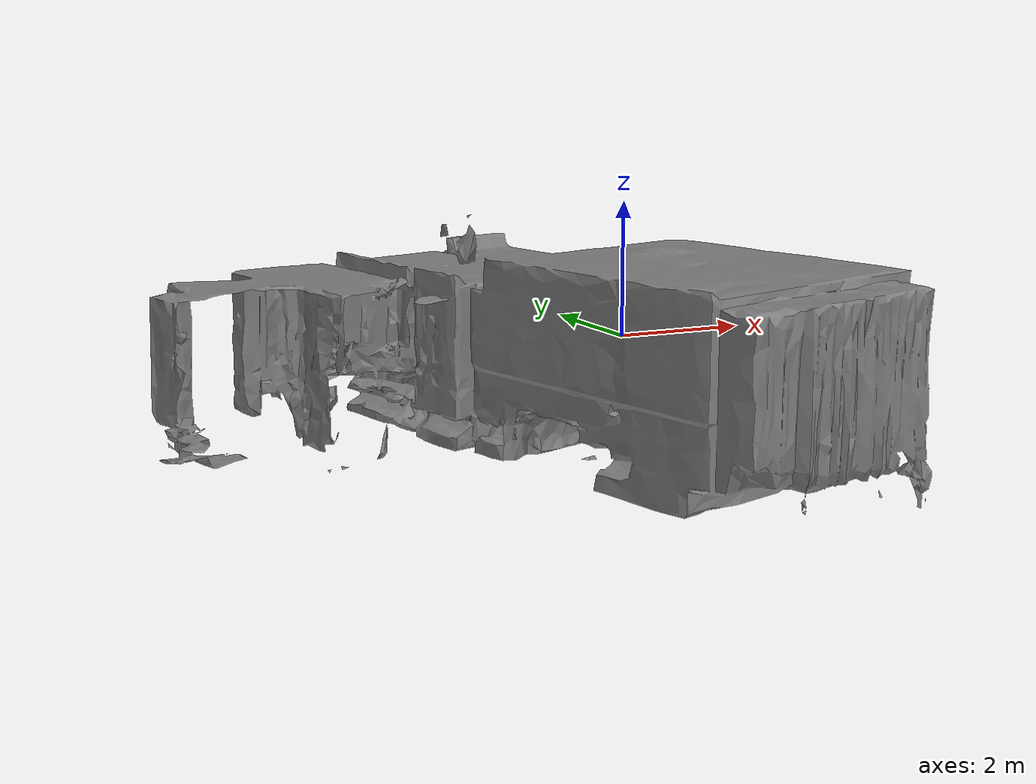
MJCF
<mujoco model="mesh_raw_prune_flat_sim">
  <option gravity="0 0 -9.81" />
  <compiler meshdir="../meshes" texturedir="../meshes/" />
  <include file="object/mesh_raw_prune_dependencies.xml" />
  <default>
    <default class="obj_visual">
      <geom group="0" type="mesh" contype="0" conaffinity="0" />
    </default>
  </default>
  <worldbody>
    <light pos="0 0 5" dir="0 0 -1" />
    <body name="mesh" pos="0 0 0">
      <include file="object/mesh_raw_prune.xml" />
    </body>
  </worldbody>
</mujoco>

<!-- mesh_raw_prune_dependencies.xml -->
<mujocoinclude>
  <asset>
    <mesh name="mesh" file="object/mesh/mesh.obj" />
    <mesh name="mesh_raw_prune_part_0" file="object/mesh_raw_prune/part_0.obj" />
    <mesh name="mesh_raw_prune_part_1" file="object/mesh_raw_prune/part_1.obj" />
    <mesh name="mesh_raw_prune_part_2" file="object/mesh_raw_prune/part_2.obj" />
    <mesh name="mesh_raw_prune_part_3" file="object/mesh_raw_prune/part_3.obj" />
    <mesh name="mesh_raw_prune_part_4" file="object/mesh_raw_prune/part_4.obj" />
    <mesh name="mesh_raw_prune_part_5" file="object/mesh_raw_prune/part_5.obj" />
    <mesh name="mesh_raw_prune_part_6" file="object/mesh_raw_prune/part_6.obj" />
    <mesh name="mesh_raw_prune_part_7" file="object/mesh_raw_prune/part_7.obj" />
    <mesh name="mesh_raw_prune_part_8" file="object/mesh_raw_prune/part_8.obj" />
    <mesh name="mesh_raw_prune_part_9" file="object/mesh_raw_prune/part_9.obj" />
    <mesh name="mesh_raw_prune_part_10" file="object/mesh_raw_prune/part_10.obj" />
    <mesh name="mesh_raw_prune_part_11" file="object/mesh_raw_prune/part_11.obj" />
    <mesh name="mesh_raw_prune_part_12" file="object/mesh_raw_prune/part_12.obj" />
    <mesh name="mesh_raw_prune_part_13" file="object/mesh_raw_prune/part_13.obj" />
    <mesh name="mesh_raw_prune_part_14" file="object/mesh_raw_prune/part_14.obj" />
    <mesh name="mesh_raw_prune_part_15" file="object/mesh_raw_prune/part_15.obj" />
    <mesh name="mesh_raw_prune_part_16" file="object/mesh_raw_prune/part_16.obj" />
    <mesh name="mesh_raw_prune_part_17" file="object/mesh_raw_prune/part_17.obj" />
    <mesh name="mesh_raw_prune_part_18" file="object/mesh_raw_prune/part_18.obj" />
    <mesh name="mesh_raw_prune_part_19" file="object/mesh_raw_prune/part_19.obj" />
    <mesh name="mesh_raw_prune_part_20" file="object/mesh_raw_prune/part_20.obj" />
    <mesh name="mesh_raw_prune_part_21" file="object/mesh_raw_prune/part_21.obj" />
    <mesh name="mesh_raw_prune_part_22" file="object/mesh_raw_prune/part_22.obj" />
    <mesh name="mesh_raw_prune_part_23" file="object/mesh_raw_prune/part_23.obj" />
    <mesh name="mesh_raw_prune_part_24" file="object/mesh_raw_prune/part_24.obj" />
    <mesh name="mesh_raw_prune_part_25" file="object/mesh_raw_prune/part_25.obj" />
    <mesh name="mesh_raw_prune_part_26" file="object/mesh_raw_prune/part_26.obj" />
    <mesh name="mesh_raw_prune_part_27" file="object/mesh_raw_prune/part_27.obj" />
    <mesh name="mesh_raw_prune_part_28" file="object/mesh_raw_prune/part_28.obj" />
    <mesh name="mesh_raw_prune_part_29" file="object/mesh_raw_prune/part_29.obj" />
    <mesh name="mesh_raw_prune_part_30" file="object/mesh_raw_prune/part_30.obj" />
    <mesh name="mesh_raw_prune_part_31" file="object/mesh_raw_prune/part_31.obj" />
    <mesh name="mesh_raw_prune_part_32" file="object/mesh_raw_prune/part_32.obj" />
    <mesh name="mesh_raw_prune_part_33" file="object/mesh_raw_prune/part_33.obj" />
    <mesh name="mesh_raw_prune_part_34" file="object/mesh_raw_prune/part_34.obj" />
    <mesh name="mesh_raw_prune_part_35" file="object/mesh_raw_prune/part_35.obj" />
    <mesh name="mesh_raw_prune_part_36" file="object/mesh_raw_prune/part_36.obj" />
    <mesh name="mesh_raw_prune_part_37" file="object/mesh_raw_prune/part_37.obj" />
    <mesh name="mesh_raw_prune_part_38" file="object/mesh_raw_prune/part_38.obj" />
    <mesh name="mesh_raw_prune_part_39" file="object/mesh_raw_prune/part_39.obj" />
    <mesh name="mesh_raw_prune_part_40" file="object/mesh_raw_prune/part_40.obj" />
    <mesh name="mesh_raw_prune_part_41" file="object/mesh_raw_prune/part_41.obj" />
    <mesh name="mesh_raw_prune_part_42" file="object/mesh_raw_prune/part_42.obj" />
    <mesh name="mesh_raw_prune_part_43" file="object/mesh_raw_prune/part_43.obj" />
    <mesh name="mesh_raw_prune_part_44" file="object/mesh_raw_prune/part_44.obj" />
    <mesh name="mesh_raw_prune_part_45" file="object/mesh_raw_prune/part_45.obj" />
    <mesh name="mesh_raw_prune_part_46" file="object/mesh_raw_prune/part_46.obj" />
    <mesh name="mesh_raw_prune_part_47" file="object/mesh_raw_prune/part_47.obj" />
    <mesh name="mesh_raw_prune_part_48" file="object/mesh_raw_prune/part_48.obj" />
    <mesh name="mesh_raw_prune_part_49" file="object/mesh_raw_prune/part_49.obj" />
    <mesh name="mesh_raw_prune_part_50" file="object/mesh_raw_prune/part_50.obj" />
    <mesh name="mesh_raw_prune_part_51" file="object/mesh_raw_prune/part_51.obj" />
    <mesh name="mesh_raw_prune_part_52" file="object/mesh_raw_prune/part_52.obj" />
    <mesh name="mesh_raw_prune_part_53" file="object/mesh_raw_prune/part_53.obj" />
    <mesh name="mesh_raw_prune_part_54" file="object/mesh_raw_prune/part_54.obj" />
    <mesh name="mesh_raw_prune_part_55" file="object/mesh_raw_prune/part_55.obj" />
    <mesh name="mesh_raw_prune_part_56" file="object/mesh_raw_prune/part_56.obj" />
    <mesh name="mesh_raw_prune_part_57" file="object/mesh_raw_prune/part_57.obj" />
    <mesh name="mesh_raw_prune_part_58" file="object/mesh_raw_prune/part_58.obj" />
    <mesh name="mesh_raw_prune_part_59" file="object/mesh_raw_prune/part_59.obj" />
    <mesh name="mesh_raw_prune_part_60" file="object/mesh_raw_prune/part_60.obj" />
    <mesh name="mesh_raw_prune_part_61" file="object/mesh_raw_prune/part_61.obj" />
    <mesh name="mesh_raw_prune_part_62" file="object/mesh_raw_prune/part_62.obj" />
    <mesh name="mesh_raw_prune_part_63" file="object/mesh_raw_prune/part_63.obj" />
    <mesh name="mesh_raw_prune_part_64" file="object/mesh_raw_prune/part_64.obj" />
    <mesh name="mesh_raw_prune_part_65" file="object/mesh_raw_prune/part_65.obj" />
    <mesh name="mesh_raw_prune_part_66" file="object/mesh_raw_prune/part_66.obj" />
    <mesh name="mesh_raw_prune_part_67" file="object/mesh_raw_prune/part_67.obj" />
    <mesh name="mesh_raw_prune_part_68" file="object/mesh_raw_prune/part_68.obj" />
    <mesh name="mesh_raw_prune_part_69" file="object/mesh_raw_prune/part_69.obj" />
    <mesh name="mesh_raw_prune_part_70" file="object/mesh_raw_prune/part_70.obj" />
    <mesh name="mesh_raw_prune_part_71" file="object/mesh_raw_prune/part_71.obj" />
    <mesh name="mesh_raw_prune_part_72" file="object/mesh_raw_prune/part_72.obj" />
    <mesh name="mesh_raw_prune_part_73" file="object/mesh_raw_prune/part_73.obj" />
    <mesh name="mesh_raw_prune_part_74" file="object/mesh_raw_prune/part_74.obj" />
    <mesh name="mesh_raw_prune_part_75" file="object/mesh_raw_prune/part_75.obj" />
    <mesh name="mesh_raw_prune_part_76" file="object/mesh_raw_prune/part_76.obj" />
    <mesh name="mesh_raw_prune_part_77" file="object/mesh_raw_prune/part_77.obj" />
    <mesh name="mesh_raw_prune_part_78" file="object/mesh_raw_prune/part_78.obj" />
    <mesh name="mesh_raw_prune_part_79" file="object/mesh_raw_prune/part_79.obj" />
    <mesh name="mesh_raw_prune_part_80" file="object/mesh_raw_prune/part_80.obj" />
    <mesh name="mesh_raw_prune_part_81" file="object/mesh_raw_prune/part_81.obj" />
    <mesh name="mesh_raw_prune_part_82" file="object/mesh_raw_prune/part_82.obj" />
    <mesh name="mesh_raw_prune_part_83" file="object/mesh_raw_prune/part_83.obj" />
    <mesh name="mesh_raw_prune_part_84" file="object/mesh_raw_prune/part_84.obj" />
    <mesh name="mesh_raw_prune_part_85" file="object/mesh_raw_prune/part_85.obj" />
    <mesh name="mesh_raw_prune_part_86" file="object/mesh_raw_prune/part_86.obj" />
    <mesh name="mesh_raw_prune_part_87" file="object/mesh_raw_prune/part_87.obj" />
    <mesh name="mesh_raw_prune_part_88" file="object/mesh_raw_prune/part_88.obj" />
    <mesh name="mesh_raw_prune_part_89" file="object/mesh_raw_prune/part_89.obj" />
    <mesh name="mesh_raw_prune_part_90" file="object/mesh_raw_prune/part_90.obj" />
    <mesh name="mesh_raw_prune_part_91" file="object/mesh_raw_prune/part_91.obj" />
    <mesh name="mesh_raw_prune_part_92" file="object/mesh_raw_prune/part_92.obj" />
    <mesh name="mesh_raw_prune_part_93" file="object/mesh_raw_prune/part_93.obj" />
    <mesh name="mesh_raw_prune_part_94" file="object/mesh_raw_prune/part_94.obj" />
    <mesh name="mesh_raw_prune_part_95" file="object/mesh_raw_prune/part_95.obj" />
    <mesh name="mesh_raw_prune_part_96" file="object/mesh_raw_prune/part_96.obj" />
    <mesh name="mesh_raw_prune_part_97" file="object/mesh_raw_prune/part_97.obj" />
    <mesh name="mesh_raw_prune_part_98" file="object/mesh_raw_prune/part_98.obj" />
    <mesh name="mesh_raw_prune_part_99" file="object/mesh_raw_prune/part_99.obj" />
    <mesh name="mesh_raw_prune_part_100" file="object/mesh_raw_prune/part_100.obj" />
    <mesh name="mesh_raw_prune_part_101" file="object/mesh_raw_prune/part_101.obj" />
    <mesh name="mesh_raw_prune_part_102" file="object/mesh_raw_prune/part_102.obj" />
    <mesh name="mesh_raw_prune_part_103" file="object/mesh_raw_prune/part_103.obj" />
    <mesh name="mesh_raw_prune_part_104" file="object/mesh_raw_prune/part_104.obj" />
    <mesh name="mesh_raw_prune_part_105" file="object/mesh_raw_prune/part_105.obj" />
    <mesh name="mesh_raw_prune_part_106" file="object/mesh_raw_prune/part_106.obj" />
    <mesh name="mesh_raw_prune_part_107" file="object/mesh_raw_prune/part_107.obj" />
    <mesh name="mesh_raw_prune_part_108" file="object/mesh_raw_prune/part_108.obj" />
    <mesh name="mesh_raw_prune_part_109" file="object/mesh_raw_prune/part_109.obj" />
    <mesh name="mesh_raw_prune_part_110" file="object/mesh_raw_prune/part_110.obj" />
    <mesh name="mesh_raw_prune_part_111" file="object/mesh_raw_prune/part_111.obj" />
    <mesh name="mesh_raw_prune_part_112" file="object/mesh_raw_prune/part_112.obj" />
    <mesh name="mesh_raw_prune_part_113" file="object/mesh_raw_prune/part_113.obj" />
    <mesh name="mesh_raw_prune_part_114" file="object/mesh_raw_prune/part_114.obj" />
    <mesh name="mesh_raw_prune_part_115" file="object/mesh_raw_prune/part_115.obj" />
    <mesh name="mesh_raw_prune_part_116" file="object/mesh_raw_prune/part_116.obj" />
    <mesh name="mesh_raw_prune_part_117" file="object/mesh_raw_prune/part_117.obj" />
    <mesh name="mesh_raw_prune_part_118" file="object/mesh_raw_prune/part_118.obj" />
    <mesh name="mesh_raw_prune_part_119" file="object/mesh_raw_prune/part_119.obj" />
    <mesh name="mesh_raw_prune_part_120" file="object/mesh_raw_prune/part_120.obj" />
    <mesh name="mesh_raw_prune_part_121" file="object/mesh_raw_prune/part_121.obj" />
    <mesh name="mesh_raw_prune_part_122" file="object/mesh_raw_prune/part_122.obj" />
    <mesh name="mesh_raw_prune_part_123" file="object/mesh_raw_prune/part_123.obj" />
    <mesh name="mesh_raw_prune_part_124" file="object/mesh_raw_prune/part_124.obj" />
    <mesh name="mesh_raw_prune_part_125" file="object/mesh_raw_prune/part_125.obj" />
    <mesh name="mesh_raw_prune_part_126" file="object/mesh_raw_prune/part_126.obj" />
    <mesh name="mesh_raw_prune_part_127" file="object/mesh_raw_prune/part_127.obj" />
    <mesh name="mesh_raw_prune_part_128" file="object/mesh_raw_prune/part_128.obj" />
    <mesh name="mesh_raw_prune_part_129" file="object/mesh_raw_prune/part_129.obj" />
    <mesh name="mesh_raw_prune_part_130" file="object/mesh_raw_prune/part_130.obj" />
    <mesh name="mesh_raw_prune_part_131" file="object/mesh_raw_prune/part_131.obj" />
    <mesh name="mesh_raw_prune_part_132" file="object/mesh_raw_prune/part_132.obj" />
    <mesh name="mesh_raw_prune_part_133" file="object/mesh_raw_prune/part_133.obj" />
    <mesh name="mesh_raw_prune_part_134" file="object/mesh_raw_prune/part_134.obj" />
    <mesh name="mesh_raw_prune_part_135" file="object/mesh_raw_prune/part_135.obj" />
    <mesh name="mesh_raw_prune_part_136" file="object/mesh_raw_prune/part_136.obj" />
    <mesh name="mesh_raw_prune_part_137" file="object/mesh_raw_prune/part_137.obj" />
    <mesh name="mesh_raw_prune_part_138" file="object/mesh_raw_prune/part_138.obj" />
    <mesh name="mesh_raw_prune_part_139" file="object/mesh_raw_prune/part_139.obj" />
    <mesh name="mesh_raw_prune_part_140" file="object/mesh_raw_prune/part_140.obj" />
    <mesh name="mesh_raw_prune_part_141" file="object/mesh_raw_prune/part_141.obj" />
    <mesh name="mesh_raw_prune_part_142" file="object/mesh_raw_prune/part_142.obj" />
    <mesh name="mesh_raw_prune_part_143" file="object/mesh_raw_prune/part_143.obj" />
    <mesh name="mesh_raw_prune_part_144" file="object/mesh_raw_prune/part_144.obj" />
    <mesh name="mesh_raw_prune_part_145" file="object/mesh_raw_prune/part_145.obj" />
    <mesh name="mesh_raw_prune_part_146" file="object/mesh_raw_prune/part_146.obj" />
    <mesh name="mesh_raw_prune_part_147" file="object/mesh_raw_prune/part_147.obj" />
    <mesh name="mesh_raw_prune_part_148" file="object/mesh_raw_prune/part_148.obj" />
    <mesh name="mesh_raw_prune_part_149" file="object/mesh_raw_prune/part_149.obj" />
    <mesh name="mesh_raw_prune_part_150" file="object/mesh_raw_prune/part_150.obj" />
    <mesh name="mesh_raw_prune_part_151" file="object/mesh_raw_prune/part_151.obj" />
    <mesh name="mesh_raw_prune_part_152" file="object/mesh_raw_prune/part_152.obj" />
    <mesh name="mesh_raw_prune_part_153" file="object/mesh_raw_prune/part_153.obj" />
    <mesh name="mesh_raw_prune_part_154" file="object/mesh_raw_prune/part_154.obj" />
    <mesh name="mesh_raw_prune_part_155" file="object/mesh_raw_prune/part_155.obj" />
    <mesh name="mesh_raw_prune_part_156" file="object/mesh_raw_prune/part_156.obj" />
    <mesh name="mesh_raw_prune_part_157" file="object/mesh_raw_prune/part_157.obj" />
    <mesh name="mesh_raw_prune_part_158" file="object/mesh_raw_prune/part_158.obj" />
    <mesh name="mesh_raw_prune_part_159" file="object/mesh_raw_prune/part_159.obj" />
    <mesh name="mesh_raw_prune_part_160" file="object/mesh_raw_prune/part_160.obj" />
    <mesh name="mesh_raw_prune_part_161" file="object/mesh_raw_prune/part_161.obj" />
    <mesh name="mesh_raw_prune_part_162" file="object/mesh_raw_prune/part_162.obj" />
    <mesh name="mesh_raw_prune_part_163" file="object/mesh_raw_prune/part_163.obj" />
    <mesh name="mesh_raw_prune_part_164" file="object/mesh_raw_prune/part_164.obj" />
    <mesh name="mesh_raw_prune_part_165" file="object/mesh_raw_prune/part_165.obj" />
    <mesh name="mesh_raw_prune_part_166" file="object/mesh_raw_prune/part_166.obj" />
    <mesh name="mesh_raw_prune_part_167" file="object/mesh_raw_prune/part_167.obj" />
    <mesh name="mesh_raw_prune_part_168" file="object/mesh_raw_prune/part_168.obj" />
    <mesh name="mesh_raw_prune_part_169" file="object/mesh_raw_prune/part_169.obj" />
    <mesh name="mesh_raw_prune_part_170" file="object/mesh_raw_prune/part_170.obj" />
    <mesh name="mesh_raw_prune_part_171" file="object/mesh_raw_prune/part_171.obj" />
    <mesh name="mesh_raw_prune_part_172" file="object/mesh_raw_prune/part_172.obj" />
    <mesh name="mesh_raw_prune_part_173" file="object/mesh_raw_prune/part_173.obj" />
    <mesh name="mesh_raw_prune_part_174" file="object/mesh_raw_prune/part_174.obj" />
    <mesh name="mesh_raw_prune_part_175" file="object/mesh_raw_prune/part_175.obj" />
    <mesh name="mesh_raw_prune_part_176" file="object/mesh_raw_prune/part_176.obj" />
    <mesh name="mesh_raw_prune_part_177" file="object/mesh_raw_prune/part_177.obj" />
    <mesh name="mesh_raw_prune_part_178" file="object/mesh_raw_prune/part_178.obj" />
    <mesh name="mesh_raw_prune_part_179" file="object/mesh_raw_prune/part_179.obj" />
    <mesh name="mesh_raw_prune_part_180" file="object/mesh_raw_prune/part_180.obj" />
    <mesh name="mesh_raw_prune_part_181" file="object/mesh_raw_prune/part_181.obj" />
    <mesh name="mesh_raw_prune_part_182" file="object/mesh_raw_prune/part_182.obj" />
    <mesh name="mesh_raw_prune_part_183" file="object/mesh_raw_prune/part_183.obj" />
    <mesh name="mesh_raw_prune_part_184" file="object/mesh_raw_prune/part_184.obj" />
    <mesh name="mesh_raw_prune_part_185" file="object/mesh_raw_prune/part_185.obj" />
    <mesh name="mesh_raw_prune_part_186" file="object/mesh_raw_prune/part_186.obj" />
    <mesh name="mesh_raw_prune_part_187" file="object/mesh_raw_prune/part_187.obj" />
    <mesh name="mesh_raw_prune_part_188" file="object/mesh_raw_prune/part_188.obj" />
    <mesh name="mesh_raw_prune_part_189" file="object/mesh_raw_prune/part_189.obj" />
    <mesh name="mesh_raw_prune_part_190" file="object/mesh_raw_prune/part_190.obj" />
    <mesh name="mesh_raw_prune_part_191" file="object/mesh_raw_prune/part_191.obj" />
    <mesh name="mesh_raw_prune_part_192" file="object/mesh_raw_prune/part_192.obj" />
    <mesh name="mesh_raw_prune_part_193" file="object/mesh_raw_prune/part_193.obj" />
    <mesh name="mesh_raw_prune_part_194" file="object/mesh_raw_prune/part_194.obj" />
    <mesh name="mesh_raw_prune_part_195" file="object/mesh_raw_prune/part_195.obj" />
    <mesh name="mesh_raw_prune_part_196" file="object/mesh_raw_prune/part_196.obj" />
    <mesh name="mesh_raw_prune_part_197" file="object/mesh_raw_prune/part_197.obj" />
    <mesh name="mesh_raw_prune_part_198" file="object/mesh_raw_prune/part_198.obj" />
    <mesh name="mesh_raw_prune_part_199" file="object/mesh_raw_prune/part_199.obj" />
    <mesh name="mesh_raw_prune_part_200" file="object/mesh_raw_prune/part_200.obj" />
    <mesh name="mesh_raw_prune_part_201" file="object/mesh_raw_prune/part_201.obj" />
    <mesh name="mesh_raw_prune_part_202" file="object/mesh_raw_prune/part_202.obj" />
    <mesh name="mesh_raw_prune_part_203" file="object/mesh_raw_prune/part_203.obj" />
    <mesh name="mesh_raw_prune_part_204" file="object/mesh_raw_prune/part_204.obj" />
    <mesh name="mesh_raw_prune_part_205" file="object/mesh_raw_prune/part_205.obj" />
    <mesh name="mesh_raw_prune_part_206" file="object/mesh_raw_prune/part_206.obj" />
    <mesh name="mesh_raw_prune_part_207" file="object/mesh_raw_prune/part_207.obj" />
    <mesh name="mesh_raw_prune_part_208" file="object/mesh_raw_prune/part_208.obj" />
    <mesh name="mesh_raw_prune_part_209" file="object/mesh_raw_prune/part_209.obj" />
    <mesh name="mesh_raw_prune_part_210" file="object/mesh_raw_prune/part_210.obj" />
    <mesh name="mesh_raw_prune_part_211" file="object/mesh_raw_prune/part_211.obj" />
    <mesh name="mesh_raw_prune_part_212" file="object/mesh_raw_prune/part_212.obj" />
    <mesh name="mesh_raw_prune_part_213" file="object/mesh_raw_prune/part_213.obj" />
    <mesh name="mesh_raw_prune_part_214" file="object/mesh_raw_prune/part_214.obj" />
    <mesh name="mesh_raw_prune_part_215" file="object/mesh_raw_prune/part_215.obj" />
    <mesh name="mesh_raw_prune_part_216" file="object/mesh_raw_prune/part_216.obj" />
    <mesh name="mesh_raw_prune_part_217" file="object/mesh_raw_prune/part_217.obj" />
    <mesh name="mesh_raw_prune_part_218" file="object/mesh_raw_prune/part_218.obj" />
    <mesh name="mesh_raw_prune_part_219" file="object/mesh_raw_prune/part_219.obj" />
    <mesh name="mesh_raw_prune_part_220" file="object/mesh_raw_prune/part_220.obj" />
    <mesh name="mesh_raw_prune_part_221" file="object/mesh_raw_prune/part_221.obj" />
    <mesh name="mesh_raw_prune_part_222" file="object/mesh_raw_prune/part_222.obj" />
    <mesh name="mesh_raw_prune_part_223" file="object/mesh_raw_prune/part_223.obj" />
    <mesh name="mesh_raw_prune_part_224" file="object/mesh_raw_prune/part_224.obj" />
    <mesh name="mesh_raw_prune_part_225" file="object/mesh_raw_prune/part_225.obj" />
    <mesh name="mesh_raw_prune_part_226" file="object/mesh_raw_prune/part_226.obj" />
    <mesh name="mesh_raw_prune_part_227" file="object/mesh_raw_prune/part_227.obj" />
    <mesh name="mesh_raw_prune_part_228" file="object/mesh_raw_prune/part_228.obj" />
    <mesh name="mesh_raw_prune_part_229" file="object/mesh_raw_prune/part_229.obj" />
    <mesh name="mesh_raw_prune_part_230" file="object/mesh_raw_prune/part_230.obj" />
    <mesh name="mesh_raw_prune_part_231" file="object/mesh_raw_prune/part_231.obj" />
    <mesh name="mesh_raw_prune_part_232" file="object/mesh_raw_prune/part_232.obj" />
    <mesh name="mesh_raw_prune_part_233" file="object/mesh_raw_prune/part_233.obj" />
    <mesh name="mesh_raw_prune_part_234" file="object/mesh_raw_prune/part_234.obj" />
    <mesh name="mesh_raw_prune_part_235" file="object/mesh_raw_prune/part_235.obj" />
    <mesh name="mesh_raw_prune_part_236" file="object/mesh_raw_prune/part_236.obj" />
    <mesh name="mesh_raw_prune_part_237" file="object/mesh_raw_prune/part_237.obj" />
    <mesh name="mesh_raw_prune_part_238" file="object/mesh_raw_prune/part_238.obj" />
    <mesh name="mesh_raw_prune_part_239" file="object/mesh_raw_prune/part_239.obj" />
    <mesh name="mesh_raw_prune_part_240" file="object/mesh_raw_prune/part_240.obj" />
    <mesh name="mesh_raw_prune_part_241" file="object/mesh_raw_prune/part_241.obj" />
    <mesh name="mesh_raw_prune_part_242" file="object/mesh_raw_prune/part_242.obj" />
    <mesh name="mesh_raw_prune_part_243" file="object/mesh_raw_prune/part_243.obj" />
    <mesh name="mesh_raw_prune_part_244" file="object/mesh_raw_prune/part_244.obj" />
    <mesh name="mesh_raw_prune_part_245" file="object/mesh_raw_prune/part_245.obj" />
    <mesh name="mesh_raw_prune_part_246" file="object/mesh_raw_prune/part_246.obj" />
    <mesh name="mesh_raw_prune_part_247" file="object/mesh_raw_prune/part_247.obj" />
    <mesh name="mesh_raw_prune_part_248" file="object/mesh_raw_prune/part_248.obj" />
    <mesh name="mesh_raw_prune_part_249" file="object/mesh_raw_prune/part_249.obj" />
    <mesh name="mesh_raw_prune_part_250" file="object/mesh_raw_prune/part_250.obj" />
    <mesh name="mesh_raw_prune_part_251" file="object/mesh_raw_prune/part_251.obj" />
    <mesh name="mesh_raw_prune_part_252" file="object/mesh_raw_prune/part_252.obj" />
    <mesh name="mesh_raw_prune_part_253" file="object/mesh_raw_prune/part_253.obj" />
    <mesh name="mesh_raw_prune_part_254" file="object/mesh_raw_prune/part_254.obj" />
    <mesh name="mesh_raw_prune_part_255" file="object/mesh_raw_prune/part_255.obj" />
    <mesh name="mesh_raw_prune_part_256" file="object/mesh_raw_prune/part_256.obj" />
    <mesh name="mesh_raw_prune_part_257" file="object/mesh_raw_prune/part_257.obj" />
    <mesh name="mesh_raw_prune_part_258" file="object/mesh_raw_prune/part_258.obj" />
    <mesh name="mesh_raw_prune_part_259" file="object/mesh_raw_prune/part_259.obj" />
    <mesh name="mesh_raw_prune_part_260" file="object/mesh_raw_prune/part_260.obj" />
    <mesh name="mesh_raw_prune_part_261" file="object/mesh_raw_prune/part_261.obj" />
    <mesh name="mesh_raw_prune_part_262" file="object/mesh_raw_prune/part_262.obj" />
    <mesh name="mesh_raw_prune_part_263" file="object/mesh_raw_prune/part_263.obj" />
    <mesh name="mesh_raw_prune_part_264" file="object/mesh_raw_prune/part_264.obj" />
    <mesh name="mesh_raw_prune_part_265" file="object/mesh_raw_prune/part_265.obj" />
    <mesh name="mesh_raw_prune_part_266" file="object/mesh_raw_prune/part_266.obj" />
    <mesh name="mesh_raw_prune_part_267" file="object/mesh_raw_prune/part_267.obj" />
    <mesh name="mesh_raw_prune_part_268" file="object/mesh_raw_prune/part_268.obj" />
    <mesh name="mesh_raw_prune_part_269" file="object/mesh_raw_prune/part_269.obj" />
    <mesh name="mesh_raw_prune_part_270" file="object/mesh_raw_prune/part_270.obj" />
    <mesh name="mesh_raw_prune_part_271" file="object/mesh_raw_prune/part_271.obj" />
    <mesh name="mesh_raw_prune_part_272" file="object/mesh_raw_prune/part_272.obj" />
    <mesh name="mesh_raw_prune_part_273" file="object/mesh_raw_prune/part_273.obj" />
    <mesh name="mesh_raw_prune_part_274" file="object/mesh_raw_prune/part_274.obj" />
    <mesh name="mesh_raw_prune_part_275" file="object/mesh_raw_prune/part_275.obj" />
    <mesh name="mesh_raw_prune_part_276" file="object/mesh_raw_prune/part_276.obj" />
    <mesh name="mesh_raw_prune_part_277" file="object/mesh_raw_prune/part_277.obj" />
    <mesh name="mesh_raw_prune_part_278" file="object/mesh_raw_prune/part_278.obj" />
    <mesh name="mesh_raw_prune_part_279" file="object/mesh_raw_prune/part_279.obj" />
    <mesh name="mesh_raw_prune_part_280" file="object/mesh_raw_prune/part_280.obj" />
    <mesh name="mesh_raw_prune_part_281" file="object/mesh_raw_prune/part_281.obj" />
    <mesh name="mesh_raw_prune_part_282" file="object/mesh_raw_prune/part_282.obj" />
    <mesh name="mesh_raw_prune_part_283" file="object/mesh_raw_prune/part_283.obj" />
    <mesh name="mesh_raw_prune_part_284" file="object/mesh_raw_prune/part_284.obj" />
    <mesh name="mesh_raw_prune_part_285" file="object/mesh_raw_prune/part_285.obj" />
    <mesh name="mesh_raw_prune_part_286" file="object/mesh_raw_prune/part_286.obj" />
    <mesh name="mesh_raw_prune_part_287" file="object/mesh_raw_prune/part_287.obj" />
    <mesh name="mesh_raw_prune_part_288" file="object/mesh_raw_prune/part_288.obj" />
    <mesh name="mesh_raw_prune_part_289" file="object/mesh_raw_prune/part_289.obj" />
    <mesh name="mesh_raw_prune_part_290" file="object/mesh_raw_prune/part_290.obj" />
    <mesh name="mesh_raw_prune_part_291" file="object/mesh_raw_prune/part_291.obj" />
    <mesh name="mesh_raw_prune_part_292" file="object/mesh_raw_prune/part_292.obj" />
    <mesh name="mesh_raw_prune_part_293" file="object/mesh_raw_prune/part_293.obj" />
    <mesh name="mesh_raw_prune_part_294" file="object/mesh_raw_prune/part_294.obj" />
    <mesh name="mesh_raw_prune_part_295" file="object/mesh_raw_prune/part_295.obj" />
    <mesh name="mesh_raw_prune_part_296" file="object/mesh_raw_prune/part_296.obj" />
    <mesh name="mesh_raw_prune_part_297" file="object/mesh_raw_prune/part_297.obj" />
    <mesh name="mesh_raw_prune_part_298" file="object/mesh_raw_prune/part_298.obj" />
    <mesh name="mesh_raw_prune_part_299" file="object/mesh_raw_prune/part_299.obj" />
    <mesh name="mesh_raw_prune_part_300" file="object/mesh_raw_prune/part_300.obj" />
    <mesh name="mesh_raw_prune_part_301" file="object/mesh_raw_prune/part_301.obj" />
    <mesh name="mesh_raw_prune_part_302" file="object/mesh_raw_prune/part_302.obj" />
    <mesh name="mesh_raw_prune_part_303" file="object/mesh_raw_prune/part_303.obj" />
    <mesh name="mesh_raw_prune_part_304" file="object/mesh_raw_prune/part_304.obj" />
    <mesh name="mesh_raw_prune_part_305" file="object/mesh_raw_prune/part_305.obj" />
    <mesh name="mesh_raw_prune_part_306" file="object/mesh_raw_prune/part_306.obj" />
    <mesh name="mesh_raw_prune_part_307" file="object/mesh_raw_prune/part_307.obj" />
    <mesh name="mesh_raw_prune_part_308" file="object/mesh_raw_prune/part_308.obj" />
    <mesh name="mesh_raw_prune_part_309" file="object/mesh_raw_prune/part_309.obj" />
    <mesh name="mesh_raw_prune_part_310" file="object/mesh_raw_prune/part_310.obj" />
    <mesh name="mesh_raw_prune_part_311" file="object/mesh_raw_prune/part_311.obj" />
    <mesh name="mesh_raw_prune_part_312" file="object/mesh_raw_prune/part_312.obj" />
    <mesh name="mesh_raw_prune_part_313" file="object/mesh_raw_prune/part_313.obj" />
    <mesh name="mesh_raw_prune_part_314" file="object/mesh_raw_prune/part_314.obj" />
    <mesh name="mesh_raw_prune_part_315" file="object/mesh_raw_prune/part_315.obj" />
    <mesh name="mesh_raw_prune_part_316" file="object/mesh_raw_prune/part_316.obj" />
    <mesh name="mesh_raw_prune_part_317" file="object/mesh_raw_prune/part_317.obj" />
    <mesh name="mesh_raw_prune_part_318" file="object/mesh_raw_prune/part_318.obj" />
    <mesh name="mesh_raw_prune_part_319" file="object/mesh_raw_prune/part_319.obj" />
    <mesh name="mesh_raw_prune_part_320" file="object/mesh_raw_prune/part_320.obj" />
    <mesh name="mesh_raw_prune_part_321" file="object/mesh_raw_prune/part_321.obj" />
    <mesh name="mesh_raw_prune_part_322" file="object/mesh_raw_prune/part_322.obj" />
    <mesh name="mesh_raw_prune_part_323" file="object/mesh_raw_prune/part_323.obj" />
    <mesh name="mesh_raw_prune_part_324" file="object/mesh_raw_prune/part_324.obj" />
    <mesh name="mesh_raw_prune_part_325" file="object/mesh_raw_prune/part_325.obj" />
    <mesh name="mesh_raw_prune_part_326" file="object/mesh_raw_prune/part_326.obj" />
    <mesh name="mesh_raw_prune_part_327" file="object/mesh_raw_prune/part_327.obj" />
    <mesh name="mesh_raw_prune_part_328" file="object/mesh_raw_prune/part_328.obj" />
    <mesh name="mesh_raw_prune_part_329" file="object/mesh_raw_prune/part_329.obj" />
    <mesh name="mesh_raw_prune_part_330" file="object/mesh_raw_prune/part_330.obj" />
    <mesh name="mesh_raw_prune_part_331" file="object/mesh_raw_prune/part_331.obj" />
    <mesh name="mesh_raw_prune_part_332" file="object/mesh_raw_prune/part_332.obj" />
    <mesh name="mesh_raw_prune_part_333" file="object/mesh_raw_prune/part_333.obj" />
    <mesh name="mesh_raw_prune_part_334" file="object/mesh_raw_prune/part_334.obj" />
    <mesh name="mesh_raw_prune_part_335" file="object/mesh_raw_prune/part_335.obj" />
    <mesh name="mesh_raw_prune_part_336" file="object/mesh_raw_prune/part_336.obj" />
    <mesh name="mesh_raw_prune_part_337" file="object/mesh_raw_prune/part_337.obj" />
    <mesh name="mesh_raw_prune_part_338" file="object/mesh_raw_prune/part_338.obj" />
    <mesh name="mesh_raw_prune_part_339" file="object/mesh_raw_prune/part_339.obj" />
    <mesh name="mesh_raw_prune_part_340" file="object/mesh_raw_prune/part_340.obj" />
    <mesh name="mesh_raw_prune_part_341" file="object/mesh_raw_prune/part_341.obj" />
    <mesh name="mesh_raw_prune_part_342" file="object/mesh_raw_prune/part_342.obj" />
    <mesh name="mesh_raw_prune_part_343" file="object/mesh_raw_prune/part_343.obj" />
    <mesh name="mesh_raw_prune_part_344" file="object/mesh_raw_prune/part_344.obj" />
    <mesh name="mesh_raw_prune_part_345" file="object/mesh_raw_prune/part_345.obj" />
    <mesh name="mesh_raw_prune_part_346" file="object/mesh_raw_prune/part_346.obj" />
    <mesh name="mesh_raw_prune_part_347" file="object/mesh_raw_prune/part_347.obj" />
    <mesh name="mesh_raw_prune_part_348" file="object/mesh_raw_prune/part_348.obj" />
    <mesh name="mesh_raw_prune_part_349" file="object/mesh_raw_prune/part_349.obj" />
    <mesh name="mesh_raw_prune_part_350" file="object/mesh_raw_prune/part_350.obj" />
    <mesh name="mesh_raw_prune_part_351" file="object/mesh_raw_prune/part_351.obj" />
    <mesh name="mesh_raw_prune_part_352" file="object/mesh_raw_prune/part_352.obj" />
    <mesh name="mesh_raw_prune_part_353" file="object/mesh_raw_prune/part_353.obj" />
    <mesh name="mesh_raw_prune_part_354" file="object/mesh_raw_prune/part_354.obj" />
    <mesh name="mesh_raw_prune_part_355" file="object/mesh_raw_prune/part_355.obj" />
    <mesh name="mesh_raw_prune_part_356" file="object/mesh_raw_prune/part_356.obj" />
    <mesh name="mesh_raw_prune_part_357" file="object/mesh_raw_prune/part_357.obj" />
    <mesh name="mesh_raw_prune_part_358" file="object/mesh_raw_prune/part_358.obj" />
    <mesh name="mesh_raw_prune_part_359" file="object/mesh_raw_prune/part_359.obj" />
    <mesh name="mesh_raw_prune_part_360" file="object/mesh_raw_prune/part_360.obj" />
    <mesh name="mesh_raw_prune_part_361" file="object/mesh_raw_prune/part_361.obj" />
    <mesh name="mesh_raw_prune_part_362" file="object/mesh_raw_prune/part_362.obj" />
    <mesh name="mesh_raw_prune_part_363" file="object/mesh_raw_prune/part_363.obj" />
    <mesh name="mesh_raw_prune_part_364" file="object/mesh_raw_prune/part_364.obj" />
    <mesh name="mesh_raw_prune_part_365" file="object/mesh_raw_prune/part_365.obj" />
    <mesh name="mesh_raw_prune_part_366" file="object/mesh_raw_prune/part_366.obj" />
    <mesh name="mesh_raw_prune_part_367" file="object/mesh_raw_prune/part_367.obj" />
    <mesh name="mesh_raw_prune_part_368" file="object/mesh_raw_prune/part_368.obj" />
    <mesh name="mesh_raw_prune_part_369" file="object/mesh_raw_prune/part_369.obj" />
    <mesh name="mesh_raw_prune_part_370" file="object/mesh_raw_prune/part_370.obj" />
    <mesh name="mesh_raw_prune_part_371" file="object/mesh_raw_prune/part_371.obj" />
    <mesh name="mesh_raw_prune_part_372" file="object/mesh_raw_prune/part_372.obj" />
    <mesh name="mesh_raw_prune_part_373" file="object/mesh_raw_prune/part_373.obj" />
    <mesh name="mesh_raw_prune_part_374" file="object/mesh_raw_prune/part_374.obj" />
    <mesh name="mesh_raw_prune_part_375" file="object/mesh_raw_prune/part_375.obj" />
    <mesh name="mesh_raw_prune_part_376" file="object/mesh_raw_prune/part_376.obj" />
    <mesh name="mesh_raw_prune_part_377" file="object/mesh_raw_prune/part_377.obj" />
    <mesh name="mesh_raw_prune_part_378" file="object/mesh_raw_prune/part_378.obj" />
    <mesh name="mesh_raw_prune_part_379" file="object/mesh_raw_prune/part_379.obj" />
    <mesh name="mesh_raw_prune_part_380" file="object/mesh_raw_prune/part_380.obj" />
    <mesh name="mesh_raw_prune_part_381" file="object/mesh_raw_prune/part_381.obj" />
    <mesh name="mesh_raw_prune_part_382" file="object/mesh_raw_prune/part_382.obj" />
    <mesh name="mesh_raw_prune_part_383" file="object/mesh_raw_prune/part_383.obj" />
    <mesh name="mesh_raw_prune_part_384" file="object/mesh_raw_prune/part_384.obj" />
    <mesh name="mesh_raw_prune_part_385" file="object/mesh_raw_prune/part_385.obj" />
    <mesh name="mesh_raw_prune_part_386" file="object/mesh_raw_prune/part_386.obj" />
    <mesh name="mesh_raw_prune_part_387" file="object/mesh_raw_prune/part_387.obj" />
    <mesh name="mesh_raw_prune_part_388" file="object/mesh_raw_prune/part_388.obj" />
    <mesh name="mesh_raw_prune_part_389" file="object/mesh_raw_prune/part_389.obj" />
    <mesh name="mesh_raw_prune_part_390" file="object/mesh_raw_prune/part_390.obj" />
    <mesh name="mesh_raw_prune_part_391" file="object/mesh_raw_prune/part_391.obj" />
    <mesh name="mesh_raw_prune_part_392" file="object/mesh_raw_prune/part_392.obj" />
    <mesh name="mesh_raw_prune_part_393" file="object/mesh_raw_prune/part_393.obj" />
    <mesh name="mesh_raw_prune_part_394" file="object/mesh_raw_prune/part_394.obj" />
    <mesh name="mesh_raw_prune_part_395" file="object/mesh_raw_prune/part_395.obj" />
    <mesh name="mesh_raw_prune_part_396" file="object/mesh_raw_prune/part_396.obj" />
    <mesh name="mesh_raw_prune_part_397" file="object/mesh_raw_prune/part_397.obj" />
    <mesh name="mesh_raw_prune_part_398" file="object/mesh_raw_prune/part_398.obj" />
    <mesh name="mesh_raw_prune_part_399" file="object/mesh_raw_prune/part_399.obj" />
    <mesh name="mesh_raw_prune_part_400" file="object/mesh_raw_prune/part_400.obj" />
    <mesh name="mesh_raw_prune_part_401" file="object/mesh_raw_prune/part_401.obj" />
    <mesh name="mesh_raw_prune_part_402" file="object/mesh_raw_prune/part_402.obj" />
    <mesh name="mesh_raw_prune_part_403" file="object/mesh_raw_prune/part_403.obj" />
    <mesh name="mesh_raw_prune_part_404" file="object/mesh_raw_prune/part_404.obj" />
    <mesh name="mesh_raw_prune_part_405" file="object/mesh_raw_prune/part_405.obj" />
    <mesh name="mesh_raw_prune_part_406" file="object/mesh_raw_prune/part_406.obj" />
    <mesh name="mesh_raw_prune_part_407" file="object/mesh_raw_prune/part_407.obj" />
    <mesh name="mesh_raw_prune_part_408" file="object/mesh_raw_prune/part_408.obj" />
    <mesh name="mesh_raw_prune_part_409" file="object/mesh_raw_prune/part_409.obj" />
    <mesh name="mesh_raw_prune_part_410" file="object/mesh_raw_prune/part_410.obj" />
    <mesh name="mesh_raw_prune_part_411" file="object/mesh_raw_prune/part_411.obj" />
    <mesh name="mesh_raw_prune_part_412" file="object/mesh_raw_prune/part_412.obj" />
    <mesh name="mesh_raw_prune_part_413" file="object/mesh_raw_prune/part_413.obj" />
    <mesh name="mesh_raw_prune_part_414" file="object/mesh_raw_prune/part_414.obj" />
    <mesh name="mesh_raw_prune_part_415" file="object/mesh_raw_prune/part_415.obj" />
    <mesh name="mesh_raw_prune_part_416" file="object/mesh_raw_prune/part_416.obj" />
    <mesh name="mesh_raw_prune_part_417" file="object/mesh_raw_prune/part_417.obj" />
    <mesh name="mesh_raw_prune_part_418" file="object/mesh_raw_prune/part_418.obj" />
    <mesh name="mesh_raw_prune_part_419" file="object/mesh_raw_prune/part_419.obj" />
    <mesh name="mesh_raw_prune_part_420" file="object/mesh_raw_prune/part_420.obj" />
    <mesh name="mesh_raw_prune_part_421" file="object/mesh_raw_prune/part_421.obj" />
    <mesh name="mesh_raw_prune_part_422" file="object/mesh_raw_prune/part_422.obj" />
    <mesh name="mesh_raw_prune_part_423" file="object/mesh_raw_prune/part_423.obj" />
    <mesh name="mesh_raw_prune_part_424" file="object/mesh_raw_prune/part_424.obj" />
    <mesh name="mesh_raw_prune_part_425" file="object/mesh_raw_prune/part_425.obj" />
    <mesh name="mesh_raw_prune_part_426" file="object/mesh_raw_prune/part_426.obj" />
    <mesh name="mesh_raw_prune_part_427" file="object/mesh_raw_prune/part_427.obj" />
    <mesh name="mesh_raw_prune_part_428" file="object/mesh_raw_prune/part_428.obj" />
    <mesh name="mesh_raw_prune_part_429" file="object/mesh_raw_prune/part_429.obj" />
    <mesh name="mesh_raw_prune_part_430" file="object/mesh_raw_prune/part_430.obj" />
    <mesh name="mesh_raw_prune_part_431" file="object/mesh_raw_prune/part_431.obj" />
    <mesh name="mesh_raw_prune_part_432" file="object/mesh_raw_prune/part_432.obj" />
    <mesh name="mesh_raw_prune_part_433" file="object/mesh_raw_prune/part_433.obj" />
    <mesh name="mesh_raw_prune_part_434" file="object/mesh_raw_prune/part_434.obj" />
    <mesh name="mesh_raw_prune_part_435" file="object/mesh_raw_prune/part_435.obj" />
    <mesh name="mesh_raw_prune_part_436" file="object/mesh_raw_prune/part_436.obj" />
    <mesh name="mesh_raw_prune_part_437" file="object/mesh_raw_prune/part_437.obj" />
    <mesh name="mesh_raw_prune_part_438" file="object/mesh_raw_prune/part_438.obj" />
    <mesh name="mesh_raw_prune_part_439" file="object/mesh_raw_prune/part_439.obj" />
    <mesh name="mesh_raw_prune_part_440" file="object/mesh_raw_prune/part_440.obj" />
    <mesh name="mesh_raw_prune_part_441" file="object/mesh_raw_prune/part_441.obj" />
    <mesh name="mesh_raw_prune_part_442" file="object/mesh_raw_prune/part_442.obj" />
    <mesh name="mesh_raw_prune_part_443" file="object/mesh_raw_prune/part_443.obj" />
    <mesh name="mesh_raw_prune_part_444" file="object/mesh_raw_prune/part_444.obj" />
    <mesh name="mesh_raw_prune_part_445" file="object/mesh_raw_prune/part_445.obj" />
    <mesh name="mesh_raw_prune_part_446" file="object/mesh_raw_prune/part_446.obj" />
    <mesh name="mesh_raw_prune_part_447" file="object/mesh_raw_prune/part_447.obj" />
    <mesh name="mesh_raw_prune_part_448" file="object/mesh_raw_prune/part_448.obj" />
    <mesh name="mesh_raw_prune_part_449" file="object/mesh_raw_prune/part_449.obj" />
    <mesh name="mesh_raw_prune_part_450" file="object/mesh_raw_prune/part_450.obj" />
    <mesh name="mesh_raw_prune_part_451" file="object/mesh_raw_prune/part_451.obj" />
    <mesh name="mesh_raw_prune_part_452" file="object/mesh_raw_prune/part_452.obj" />
    <mesh name="mesh_raw_prune_part_453" file="object/mesh_raw_prune/part_453.obj" />
    <mesh name="mesh_raw_prune_part_454" file="object/mesh_raw_prune/part_454.obj" />
    <mesh name="mesh_raw_prune_part_455" file="object/mesh_raw_prune/part_455.obj" />
    <mesh name="mesh_raw_prune_part_456" file="object/mesh_raw_prune/part_456.obj" />
    <mesh name="mesh_raw_prune_part_457" file="object/mesh_raw_prune/part_457.obj" />
    <mesh name="mesh_raw_prune_part_458" file="object/mesh_raw_prune/part_458.obj" />
    <mesh name="mesh_raw_prune_part_459" file="object/mesh_raw_prune/part_459.obj" />
    <mesh name="mesh_raw_prune_part_460" file="object/mesh_raw_prune/part_460.obj" />
    <mesh name="mesh_raw_prune_part_461" file="object/mesh_raw_prune/part_461.obj" />
    <mesh name="mesh_raw_prune_part_462" file="object/mesh_raw_prune/part_462.obj" />
    <mesh name="mesh_raw_prune_part_463" file="object/mesh_raw_prune/part_463.obj" />
    <mesh name="mesh_raw_prune_part_464" file="object/mesh_raw_prune/part_464.obj" />
    <mesh name="mesh_raw_prune_part_465" file="object/mesh_raw_prune/part_465.obj" />
    <mesh name="mesh_raw_prune_part_466" file="object/mesh_raw_prune/part_466.obj" />
    <mesh name="mesh_raw_prune_part_467" file="object/mesh_raw_prune/part_467.obj" />
    <mesh name="mesh_raw_prune_part_468" file="object/mesh_raw_prune/part_468.obj" />
    <mesh name="mesh_raw_prune_part_469" file="object/mesh_raw_prune/part_469.obj" />
    <mesh name="mesh_raw_prune_part_470" file="object/mesh_raw_prune/part_470.obj" />
    <mesh name="mesh_raw_prune_part_471" file="object/mesh_raw_prune/part_471.obj" />
    <mesh name="mesh_raw_prune_part_472" file="object/mesh_raw_prune/part_472.obj" />
    <mesh name="mesh_raw_prune_part_473" file="object/mesh_raw_prune/part_473.obj" />
    <mesh name="mesh_raw_prune_part_474" file="object/mesh_raw_prune/part_474.obj" />
    <mesh name="mesh_raw_prune_part_475" file="object/mesh_raw_prune/part_475.obj" />
    <mesh name="mesh_raw_prune_part_476" file="object/mesh_raw_prune/part_476.obj" />
    <mesh name="mesh_raw_prune_part_477" file="object/mesh_raw_prune/part_477.obj" />
    <mesh name="mesh_raw_prune_part_478" file="object/mesh_raw_prune/part_478.obj" />
    <mesh name="mesh_raw_prune_part_479" file="object/mesh_raw_prune/part_479.obj" />
    <mesh name="mesh_raw_prune_part_480" file="object/mesh_raw_prune/part_480.obj" />
  </asset>
</mujocoinclude>
